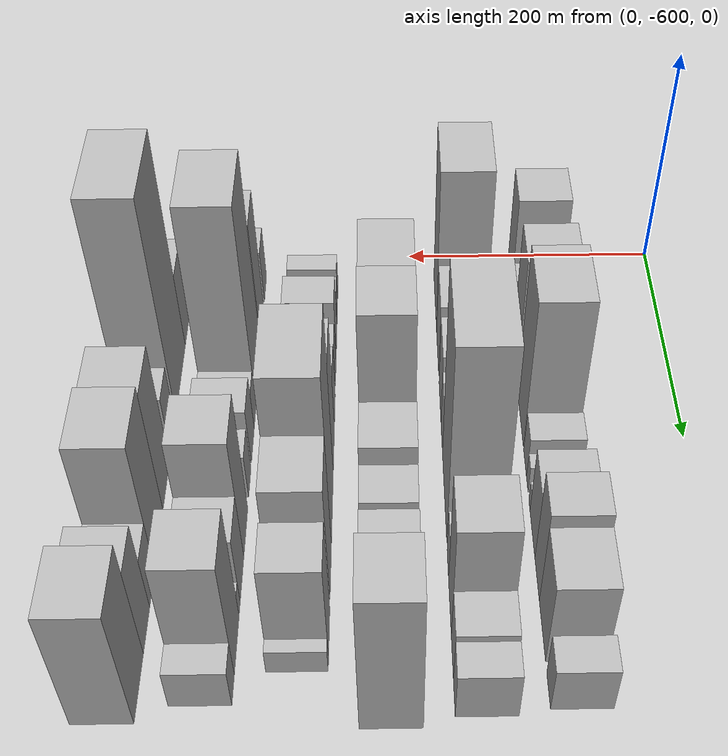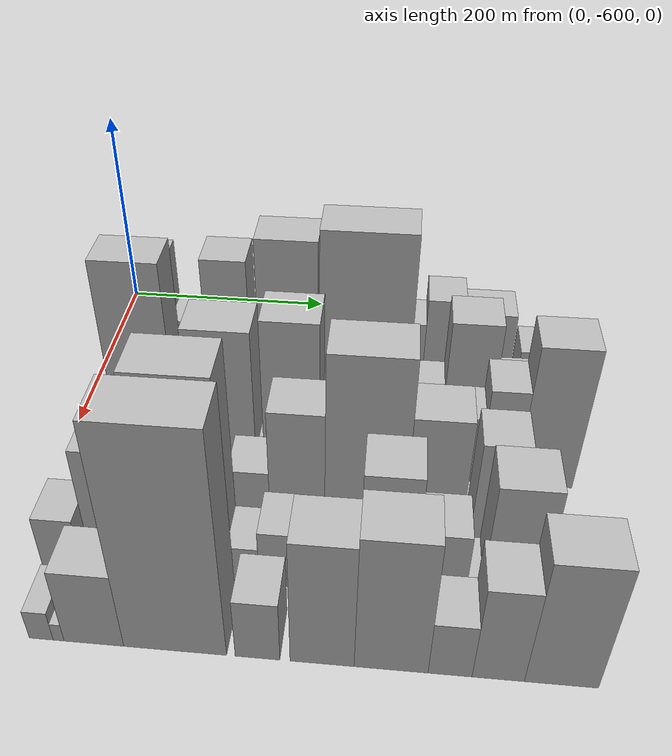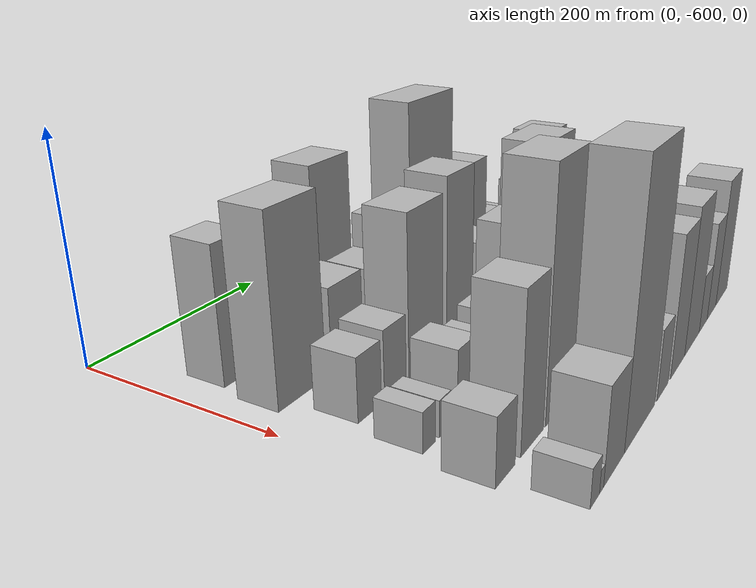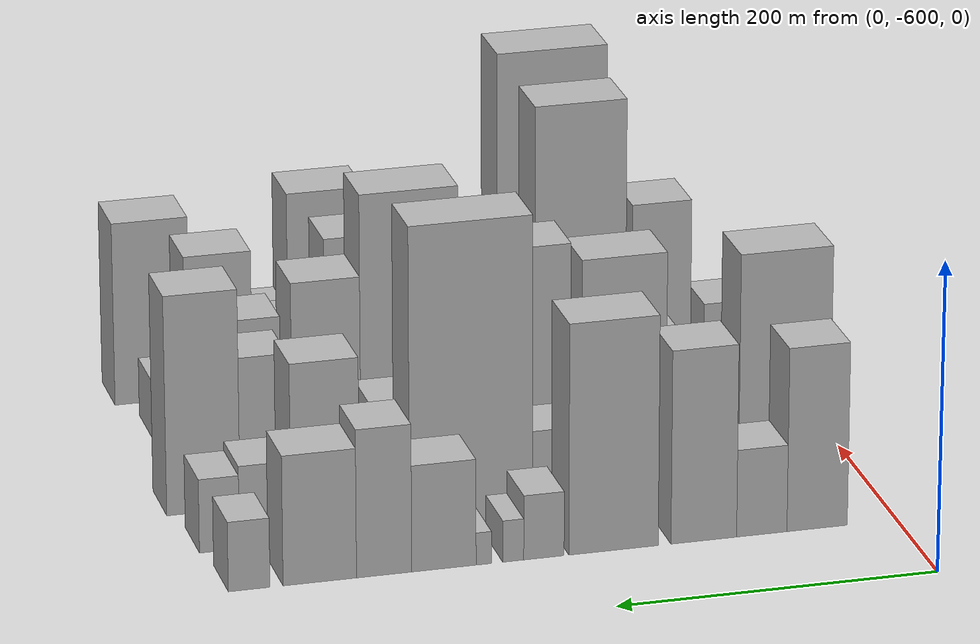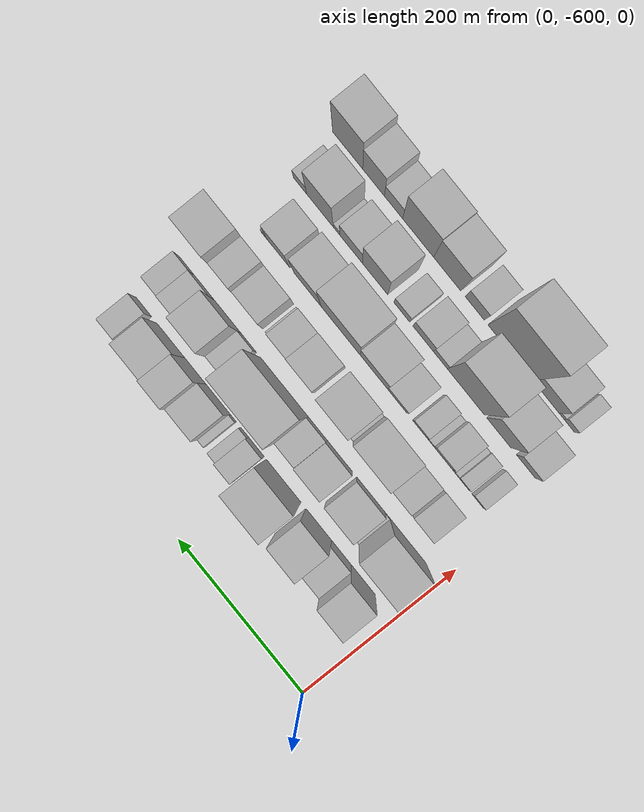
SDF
<sdf version="1.6">
 <world name="default">
  <model name="building_13">
   <static>1</static>
   <pose>100.0000 -549.0110 0 0.000000 0.000000 0.000000</pose>
   <link name="link">
    <pose>0 0 60.00 0 0 0</pose>
    <collision name="collision"><geometry><box><size>40.0000 38.3477 120.0000</size></box></geometry></collision>
    <visual name="visual">
     <cast_shadows>0</cast_shadows>
     <geometry><box><size>40.0000 38.3477 120.0000</size></box></geometry>
     <material>
      <script>
       <uri>model://HANNAS_wall/materials/scripts</uri>
       <uri>model://HANNAS_wall/materials/textures</uri>
       <name>vrc/HANNAS_wall</name>
      </script>
     </material>
    </visual>
   </link>
  </model>
  <model name="building_14">
   <static>1</static>
   <pose>100.0000 -513.8945 0 0.000000 0.000000 0.000000</pose>
   <link name="link">
    <pose>0 0 28.50 0 0 0</pose>
    <collision name="collision"><geometry><box><size>40.0000 31.8853 57.0000</size></box></geometry></collision>
    <visual name="visual">
     <cast_shadows>0</cast_shadows>
     <geometry><box><size>40.0000 31.8853 57.0000</size></box></geometry>
     <material>
      <script>
       <uri>model://HANNAS_wall/materials/scripts</uri>
       <uri>model://HANNAS_wall/materials/textures</uri>
       <name>vrc/HANNAS_wall</name>
      </script>
     </material>
    </visual>
   </link>
  </model>
  <model name="building_15">
   <static>1</static>
   <pose>100.0000 -477.2440 0 0.000000 0.000000 0.000000</pose>
   <link name="link">
    <pose>0 0 63.00 0 0 0</pose>
    <collision name="collision"><geometry><box><size>40.0000 41.4157 126.0000</size></box></geometry></collision>
    <visual name="visual">
     <cast_shadows>0</cast_shadows>
     <geometry><box><size>40.0000 41.4157 126.0000</size></box></geometry>
     <material>
      <script>
       <uri>model://HANNAS_wall/materials/scripts</uri>
       <uri>model://HANNAS_wall/materials/textures</uri>
       <name>vrc/HANNAS_wall</name>
      </script>
     </material>
    </visual>
   </link>
  </model>
  <model name="building_16">
   <static>1</static>
   <pose>100.0000 -420.5181 0 0.000000 0.000000 0.000000</pose>
   <link name="link">
    <pose>0 0 75.00 0 0 0</pose>
    <collision name="collision"><geometry><box><size>40.0000 56.0362 150.0000</size></box></geometry></collision>
    <visual name="visual">
     <cast_shadows>0</cast_shadows>
     <geometry><box><size>40.0000 56.0362 150.0000</size></box></geometry>
     <material>
      <script>
       <uri>model://HANNAS_wall/materials/scripts</uri>
       <uri>model://HANNAS_wall/materials/textures</uri>
       <name>vrc/HANNAS_wall</name>
      </script>
     </material>
    </visual>
   </link>
  </model>
  <model name="building_17">
   <static>1</static>
   <pose>100.0000 -376.9105 0 0.000000 0.000000 0.000000</pose>
   <link name="link">
    <pose>0 0 21.00 0 0 0</pose>
    <collision name="collision"><geometry><box><size>40.0000 25.1789 42.0000</size></box></geometry></collision>
    <visual name="visual">
     <cast_shadows>0</cast_shadows>
     <geometry><box><size>40.0000 25.1789 42.0000</size></box></geometry>
     <material>
      <script>
       <uri>model://HANNAS_wall/materials/scripts</uri>
       <uri>model://HANNAS_wall/materials/textures</uri>
       <name>vrc/HANNAS_wall</name>
      </script>
     </material>
    </visual>
   </link>
  </model>
  <model name="building_18">
   <static>1</static>
   <pose>100.0000 -357.7944 0 0.000000 0.000000 0.000000</pose>
   <link name="link">
    <pose>0 0 13.50 0 0 0</pose>
    <collision name="collision"><geometry><box><size>40.0000 13.0532 27.0000</size></box></geometry></collision>
    <visual name="visual">
     <cast_shadows>0</cast_shadows>
     <geometry><box><size>40.0000 13.0532 27.0000</size></box></geometry>
     <material>
      <script>
       <uri>model://HANNAS_wall/materials/scripts</uri>
       <uri>model://HANNAS_wall/materials/textures</uri>
       <name>vrc/HANNAS_wall</name>
      </script>
     </material>
    </visual>
   </link>
  </model>
  <model name="building_19">
   <static>1</static>
   <pose>100.0000 -339.4813 0 0.000000 0.000000 0.000000</pose>
   <link name="link">
    <pose>0 0 10.50 0 0 0</pose>
    <collision name="collision"><geometry><box><size>40.0000 9.5730 21.0000</size></box></geometry></collision>
    <visual name="visual">
     <cast_shadows>0</cast_shadows>
     <geometry><box><size>40.0000 9.5730 21.0000</size></box></geometry>
     <material>
      <script>
       <uri>model://HANNAS_wall/materials/scripts</uri>
       <uri>model://HANNAS_wall/materials/textures</uri>
       <name>vrc/HANNAS_wall</name>
      </script>
     </material>
    </visual>
   </link>
  </model>
  <model name="building_20">
   <static>1</static>
   <pose>100.0000 -314.7548 0 0.000000 0.000000 0.000000</pose>
   <link name="link">
    <pose>0 0 34.50 0 0 0</pose>
    <collision name="collision"><geometry><box><size>40.0000 39.8801 69.0000</size></box></geometry></collision>
    <visual name="visual">
     <cast_shadows>0</cast_shadows>
     <geometry><box><size>40.0000 39.8801 69.0000</size></box></geometry>
     <material>
      <script>
       <uri>model://HANNAS_wall/materials/scripts</uri>
       <uri>model://HANNAS_wall/materials/textures</uri>
       <name>vrc/HANNAS_wall</name>
      </script>
     </material>
    </visual>
   </link>
  </model>
  <model name="building_21">
   <static>1</static>
   <pose>100.0000 -277.7871 0 0.000000 0.000000 0.000000</pose>
   <link name="link">
    <pose>0 0 48.00 0 0 0</pose>
    <collision name="collision"><geometry><box><size>40.0000 34.0553 96.0000</size></box></geometry></collision>
    <visual name="visual">
     <cast_shadows>0</cast_shadows>
     <geometry><box><size>40.0000 34.0553 96.0000</size></box></geometry>
     <material>
      <script>
       <uri>model://HANNAS_wall/materials/scripts</uri>
       <uri>model://HANNAS_wall/materials/textures</uri>
       <name>vrc/HANNAS_wall</name>
      </script>
     </material>
    </visual>
   </link>
  </model>
  <model name="building_22">
   <static>1</static>
   <pose>100.0000 -238.1941 0 0.000000 0.000000 0.000000</pose>
   <link name="link">
    <pose>0 0 42.00 0 0 0</pose>
    <collision name="collision"><geometry><box><size>40.0000 45.1307 84.0000</size></box></geometry></collision>
    <visual name="visual">
     <cast_shadows>0</cast_shadows>
     <geometry><box><size>40.0000 45.1307 84.0000</size></box></geometry>
     <material>
      <script>
       <uri>model://HANNAS_wall/materials/scripts</uri>
       <uri>model://HANNAS_wall/materials/textures</uri>
       <name>vrc/HANNAS_wall</name>
      </script>
     </material>
    </visual>
   </link>
  </model>
  <model name="building_23">
   <static>1</static>
   <pose>100.0000 -194.8852 0 0.000000 0.000000 0.000000</pose>
   <link name="link">
    <pose>0 0 22.50 0 0 0</pose>
    <collision name="collision"><geometry><box><size>40.0000 25.4871 45.0000</size></box></geometry></collision>
    <visual name="visual">
     <cast_shadows>0</cast_shadows>
     <geometry><box><size>40.0000 25.4871 45.0000</size></box></geometry>
     <material>
      <script>
       <uri>model://HANNAS_wall/materials/scripts</uri>
       <uri>model://HANNAS_wall/materials/textures</uri>
       <name>vrc/HANNAS_wall</name>
      </script>
     </material>
    </visual>
   </link>
  </model>
  <model name="building_64">
   <static>1</static>
   <pose>160.0000 -546.1811 0 0.000000 0.000000 0.000000</pose>
   <link name="link">
    <pose>0 0 79.50 0 0 0</pose>
    <collision name="collision"><geometry><box><size>40.0000 58.6380 159.0000</size></box></geometry></collision>
    <visual name="visual">
     <cast_shadows>0</cast_shadows>
     <geometry><box><size>40.0000 58.6380 159.0000</size></box></geometry>
     <material>
      <script>
       <uri>model://HANNAS_wall/materials/scripts</uri>
       <uri>model://HANNAS_wall/materials/textures</uri>
       <name>vrc/HANNAS_wall</name>
      </script>
     </material>
    </visual>
   </link>
  </model>
  <model name="building_65">
   <static>1</static>
   <pose>160.0000 -512.8103 0 0.000000 0.000000 0.000000</pose>
   <link name="link">
    <pose>0 0 9.00 0 0 0</pose>
    <collision name="collision"><geometry><box><size>40.0000 8.1037 18.0000</size></box></geometry></collision>
    <visual name="visual">
     <cast_shadows>0</cast_shadows>
     <geometry><box><size>40.0000 8.1037 18.0000</size></box></geometry>
     <material>
      <script>
       <uri>model://HANNAS_wall/materials/scripts</uri>
       <uri>model://HANNAS_wall/materials/textures</uri>
       <name>vrc/HANNAS_wall</name>
      </script>
     </material>
    </visual>
   </link>
  </model>
  <model name="building_66">
   <static>1</static>
   <pose>160.0000 -486.3279 0 0.000000 0.000000 0.000000</pose>
   <link name="link">
    <pose>0 0 37.50 0 0 0</pose>
    <collision name="collision"><geometry><box><size>40.0000 44.8610 75.0000</size></box></geometry></collision>
    <visual name="visual">
     <cast_shadows>0</cast_shadows>
     <geometry><box><size>40.0000 44.8610 75.0000</size></box></geometry>
     <material>
      <script>
       <uri>model://HANNAS_wall/materials/scripts</uri>
       <uri>model://HANNAS_wall/materials/textures</uri>
       <name>vrc/HANNAS_wall</name>
      </script>
     </material>
    </visual>
   </link>
  </model>
  <model name="building_67">
   <static>1</static>
   <pose>160.0000 -436.6515 0 0.000000 0.000000 0.000000</pose>
   <link name="link">
    <pose>0 0 36.00 0 0 0</pose>
    <collision name="collision"><geometry><box><size>40.0000 40.4918 72.0000</size></box></geometry></collision>
    <visual name="visual">
     <cast_shadows>0</cast_shadows>
     <geometry><box><size>40.0000 40.4918 72.0000</size></box></geometry>
     <material>
      <script>
       <uri>model://HANNAS_wall/materials/scripts</uri>
       <uri>model://HANNAS_wall/materials/textures</uri>
       <name>vrc/HANNAS_wall</name>
      </script>
     </material>
    </visual>
   </link>
  </model>
  <model name="building_68">
   <static>1</static>
   <pose>160.0000 -401.1397 0 0.000000 0.000000 0.000000</pose>
   <link name="link">
    <pose>0 0 28.50 0 0 0</pose>
    <collision name="collision"><geometry><box><size>40.0000 30.5318 57.0000</size></box></geometry></collision>
    <visual name="visual">
     <cast_shadows>0</cast_shadows>
     <geometry><box><size>40.0000 30.5318 57.0000</size></box></geometry>
     <material>
      <script>
       <uri>model://HANNAS_wall/materials/scripts</uri>
       <uri>model://HANNAS_wall/materials/textures</uri>
       <name>vrc/HANNAS_wall</name>
      </script>
     </material>
    </visual>
   </link>
  </model>
  <model name="building_69">
   <static>1</static>
   <pose>160.0000 -347.1861 0 0.000000 0.000000 0.000000</pose>
   <link name="link">
    <pose>0 0 99.00 0 0 0</pose>
    <collision name="collision"><geometry><box><size>40.0000 77.3754 198.0000</size></box></geometry></collision>
    <visual name="visual">
     <cast_shadows>0</cast_shadows>
     <geometry><box><size>40.0000 77.3754 198.0000</size></box></geometry>
     <material>
      <script>
       <uri>model://HANNAS_wall/materials/scripts</uri>
       <uri>model://HANNAS_wall/materials/textures</uri>
       <name>vrc/HANNAS_wall</name>
      </script>
     </material>
    </visual>
   </link>
  </model>
  <model name="building_70">
   <static>1</static>
   <pose>160.0000 -289.8825 0 0.000000 0.000000 0.000000</pose>
   <link name="link">
    <pose>0 0 22.50 0 0 0</pose>
    <collision name="collision"><geometry><box><size>40.0000 25.2317 45.0000</size></box></geometry></collision>
    <visual name="visual">
     <cast_shadows>0</cast_shadows>
     <geometry><box><size>40.0000 25.2317 45.0000</size></box></geometry>
     <material>
      <script>
       <uri>model://HANNAS_wall/materials/scripts</uri>
       <uri>model://HANNAS_wall/materials/textures</uri>
       <name>vrc/HANNAS_wall</name>
      </script>
     </material>
    </visual>
   </link>
  </model>
  <model name="building_71">
   <static>1</static>
   <pose>160.0000 -255.9788 0 0.000000 0.000000 0.000000</pose>
   <link name="link">
    <pose>0 0 58.50 0 0 0</pose>
    <collision name="collision"><geometry><box><size>40.0000 42.5757 117.0000</size></box></geometry></collision>
    <visual name="visual">
     <cast_shadows>0</cast_shadows>
     <geometry><box><size>40.0000 42.5757 117.0000</size></box></geometry>
     <material>
      <script>
       <uri>model://HANNAS_wall/materials/scripts</uri>
       <uri>model://HANNAS_wall/materials/textures</uri>
       <name>vrc/HANNAS_wall</name>
      </script>
     </material>
    </visual>
   </link>
  </model>
  <model name="building_72">
   <static>1</static>
   <pose>160.0000 -218.6402 0 0.000000 0.000000 0.000000</pose>
   <link name="link">
    <pose>0 0 27.00 0 0 0</pose>
    <collision name="collision"><geometry><box><size>40.0000 32.1015 54.0000</size></box></geometry></collision>
    <visual name="visual">
     <cast_shadows>0</cast_shadows>
     <geometry><box><size>40.0000 32.1015 54.0000</size></box></geometry>
     <material>
      <script>
       <uri>model://HANNAS_wall/materials/scripts</uri>
       <uri>model://HANNAS_wall/materials/textures</uri>
       <name>vrc/HANNAS_wall</name>
      </script>
     </material>
    </visual>
   </link>
  </model>
  <model name="building_73">
   <static>1</static>
   <pose>160.0000 -190.2422 0 0.000000 0.000000 0.000000</pose>
   <link name="link">
    <pose>0 0 24.00 0 0 0</pose>
    <collision name="collision"><geometry><box><size>40.0000 24.6945 48.0000</size></box></geometry></collision>
    <visual name="visual">
     <cast_shadows>0</cast_shadows>
     <geometry><box><size>40.0000 24.6945 48.0000</size></box></geometry>
     <material>
      <script>
       <uri>model://HANNAS_wall/materials/scripts</uri>
       <uri>model://HANNAS_wall/materials/textures</uri>
       <name>vrc/HANNAS_wall</name>
      </script>
     </material>
    </visual>
   </link>
  </model>
  <model name="building_117">
   <static>1</static>
   <pose>220.0000 -543.0124 0 0.000000 0.000000 0.000000</pose>
   <link name="link">
    <pose>0 0 27.00 0 0 0</pose>
    <collision name="collision"><geometry><box><size>40.0000 31.2205 54.0000</size></box></geometry></collision>
    <visual name="visual">
     <cast_shadows>0</cast_shadows>
     <geometry><box><size>40.0000 31.2205 54.0000</size></box></geometry>
     <material>
      <script>
       <uri>model://HANNAS_wall/materials/scripts</uri>
       <uri>model://HANNAS_wall/materials/textures</uri>
       <name>vrc/HANNAS_wall</name>
      </script>
     </material>
    </visual>
   </link>
  </model>
  <model name="building_118">
   <static>1</static>
   <pose>220.0000 -507.6047 0 0.000000 0.000000 0.000000</pose>
   <link name="link">
    <pose>0 0 30.00 0 0 0</pose>
    <collision name="collision"><geometry><box><size>40.0000 31.5948 60.0000</size></box></geometry></collision>
    <visual name="visual">
     <cast_shadows>0</cast_shadows>
     <geometry><box><size>40.0000 31.5948 60.0000</size></box></geometry>
     <material>
      <script>
       <uri>model://HANNAS_wall/materials/scripts</uri>
       <uri>model://HANNAS_wall/materials/textures</uri>
       <name>vrc/HANNAS_wall</name>
      </script>
     </material>
    </visual>
   </link>
  </model>
  <model name="building_119">
   <static>1</static>
   <pose>220.0000 -460.5704 0 0.000000 0.000000 0.000000</pose>
   <link name="link">
    <pose>0 0 70.50 0 0 0</pose>
    <collision name="collision"><geometry><box><size>40.0000 54.4738 141.0000</size></box></geometry></collision>
    <visual name="visual">
     <cast_shadows>0</cast_shadows>
     <geometry><box><size>40.0000 54.4738 141.0000</size></box></geometry>
     <material>
      <script>
       <uri>model://HANNAS_wall/materials/scripts</uri>
       <uri>model://HANNAS_wall/materials/textures</uri>
       <name>vrc/HANNAS_wall</name>
      </script>
     </material>
    </visual>
   </link>
  </model>
  <model name="building_120">
   <static>1</static>
   <pose>220.0000 -429.8529 0 0.000000 0.000000 0.000000</pose>
   <link name="link">
    <pose>0 0 7.50 0 0 0</pose>
    <collision name="collision"><geometry><box><size>40.0000 6.9613 15.0000</size></box></geometry></collision>
    <visual name="visual">
     <cast_shadows>0</cast_shadows>
     <geometry><box><size>40.0000 6.9613 15.0000</size></box></geometry>
     <material>
      <script>
       <uri>model://HANNAS_wall/materials/scripts</uri>
       <uri>model://HANNAS_wall/materials/textures</uri>
       <name>vrc/HANNAS_wall</name>
      </script>
     </material>
    </visual>
   </link>
  </model>
  <model name="building_121">
   <static>1</static>
   <pose>220.0000 -403.0510 0 0.000000 0.000000 0.000000</pose>
   <link name="link">
    <pose>0 0 76.50 0 0 0</pose>
    <collision name="collision"><geometry><box><size>40.0000 46.6425 153.0000</size></box></geometry></collision>
    <visual name="visual">
     <cast_shadows>0</cast_shadows>
     <geometry><box><size>40.0000 46.6425 153.0000</size></box></geometry>
     <material>
      <script>
       <uri>model://HANNAS_wall/materials/scripts</uri>
       <uri>model://HANNAS_wall/materials/textures</uri>
       <name>vrc/HANNAS_wall</name>
      </script>
     </material>
    </visual>
   </link>
  </model>
  <model name="building_122">
   <static>1</static>
   <pose>220.0000 -350.6052 0 0.000000 0.000000 0.000000</pose>
   <link name="link">
    <pose>0 0 39.00 0 0 0</pose>
    <collision name="collision"><geometry><box><size>40.0000 40.2491 78.0000</size></box></geometry></collision>
    <visual name="visual">
     <cast_shadows>0</cast_shadows>
     <geometry><box><size>40.0000 40.2491 78.0000</size></box></geometry>
     <material>
      <script>
       <uri>model://HANNAS_wall/materials/scripts</uri>
       <uri>model://HANNAS_wall/materials/textures</uri>
       <name>vrc/HANNAS_wall</name>
      </script>
     </material>
    </visual>
   </link>
  </model>
  <model name="building_123">
   <static>1</static>
   <pose>220.0000 -314.6369 0 0.000000 0.000000 0.000000</pose>
   <link name="link">
    <pose>0 0 30.00 0 0 0</pose>
    <collision name="collision"><geometry><box><size>40.0000 31.6874 60.0000</size></box></geometry></collision>
    <visual name="visual">
     <cast_shadows>0</cast_shadows>
     <geometry><box><size>40.0000 31.6874 60.0000</size></box></geometry>
     <material>
      <script>
       <uri>model://HANNAS_wall/materials/scripts</uri>
       <uri>model://HANNAS_wall/materials/textures</uri>
       <name>vrc/HANNAS_wall</name>
      </script>
     </material>
    </visual>
   </link>
  </model>
  <model name="building_124">
   <static>1</static>
   <pose>220.0000 -295.6961 0 0.000000 0.000000 0.000000</pose>
   <link name="link">
    <pose>0 0 7.50 0 0 0</pose>
    <collision name="collision"><geometry><box><size>40.0000 6.1943 15.0000</size></box></geometry></collision>
    <visual name="visual">
     <cast_shadows>0</cast_shadows>
     <geometry><box><size>40.0000 6.1943 15.0000</size></box></geometry>
     <material>
      <script>
       <uri>model://HANNAS_wall/materials/scripts</uri>
       <uri>model://HANNAS_wall/materials/textures</uri>
       <name>vrc/HANNAS_wall</name>
      </script>
     </material>
    </visual>
   </link>
  </model>
  <model name="building_125">
   <static>1</static>
   <pose>220.0000 -267.4667 0 0.000000 0.000000 0.000000</pose>
   <link name="link">
    <pose>0 0 34.50 0 0 0</pose>
    <collision name="collision"><geometry><box><size>40.0000 40.2645 69.0000</size></box></geometry></collision>
    <visual name="visual">
     <cast_shadows>0</cast_shadows>
     <geometry><box><size>40.0000 40.2645 69.0000</size></box></geometry>
     <material>
      <script>
       <uri>model://HANNAS_wall/materials/scripts</uri>
       <uri>model://HANNAS_wall/materials/textures</uri>
       <name>vrc/HANNAS_wall</name>
      </script>
     </material>
    </visual>
   </link>
  </model>
  <model name="building_126">
   <static>1</static>
   <pose>220.0000 -232.0064 0 0.000000 0.000000 0.000000</pose>
   <link name="link">
    <pose>0 0 49.50 0 0 0</pose>
    <collision name="collision"><geometry><box><size>40.0000 30.6561 99.0000</size></box></geometry></collision>
    <visual name="visual">
     <cast_shadows>0</cast_shadows>
     <geometry><box><size>40.0000 30.6561 99.0000</size></box></geometry>
     <material>
      <script>
       <uri>model://HANNAS_wall/materials/scripts</uri>
       <uri>model://HANNAS_wall/materials/textures</uri>
       <name>vrc/HANNAS_wall</name>
      </script>
     </material>
    </visual>
   </link>
  </model>
  <model name="building_127">
   <static>1</static>
   <pose>220.0000 -193.7218 0 0.000000 0.000000 0.000000</pose>
   <link name="link">
    <pose>0 0 72.00 0 0 0</pose>
    <collision name="collision"><geometry><box><size>40.0000 45.9133 144.0000</size></box></geometry></collision>
    <visual name="visual">
     <cast_shadows>0</cast_shadows>
     <geometry><box><size>40.0000 45.9133 144.0000</size></box></geometry>
     <material>
      <script>
       <uri>model://HANNAS_wall/materials/scripts</uri>
       <uri>model://HANNAS_wall/materials/textures</uri>
       <name>vrc/HANNAS_wall</name>
      </script>
     </material>
    </visual>
   </link>
  </model>
  <model name="building_171">
   <static>1</static>
   <pose>280.0000 -558.8904 0 0.000000 0.000000 0.000000</pose>
   <link name="link">
    <pose>0 0 16.50 0 0 0</pose>
    <collision name="collision"><geometry><box><size>40.0000 17.8056 33.0000</size></box></geometry></collision>
    <visual name="visual">
     <cast_shadows>0</cast_shadows>
     <geometry><box><size>40.0000 17.8056 33.0000</size></box></geometry>
     <material>
      <script>
       <uri>model://HANNAS_wall/materials/scripts</uri>
       <uri>model://HANNAS_wall/materials/textures</uri>
       <name>vrc/HANNAS_wall</name>
      </script>
     </material>
    </visual>
   </link>
  </model>
  <model name="building_172">
   <static>1</static>
   <pose>280.0000 -536.4356 0 0.000000 0.000000 0.000000</pose>
   <link name="link">
    <pose>0 0 15.00 0 0 0</pose>
    <collision name="collision"><geometry><box><size>40.0000 17.1041 30.0000</size></box></geometry></collision>
    <visual name="visual">
     <cast_shadows>0</cast_shadows>
     <geometry><box><size>40.0000 17.1041 30.0000</size></box></geometry>
     <material>
      <script>
       <uri>model://HANNAS_wall/materials/scripts</uri>
       <uri>model://HANNAS_wall/materials/textures</uri>
       <name>vrc/HANNAS_wall</name>
      </script>
     </material>
    </visual>
   </link>
  </model>
  <model name="building_173">
   <static>1</static>
   <pose>280.0000 -522.8196 0 0.000000 0.000000 0.000000</pose>
   <link name="link">
    <pose>0 0 10.50 0 0 0</pose>
    <collision name="collision"><geometry><box><size>40.0000 10.1279 21.0000</size></box></geometry></collision>
    <visual name="visual">
     <cast_shadows>0</cast_shadows>
     <geometry><box><size>40.0000 10.1279 21.0000</size></box></geometry>
     <material>
      <script>
       <uri>model://HANNAS_wall/materials/scripts</uri>
       <uri>model://HANNAS_wall/materials/textures</uri>
       <name>vrc/HANNAS_wall</name>
      </script>
     </material>
    </visual>
   </link>
  </model>
  <model name="building_174">
   <static>1</static>
   <pose>280.0000 -502.8081 0 0.000000 0.000000 0.000000</pose>
   <link name="link">
    <pose>0 0 28.50 0 0 0</pose>
    <collision name="collision"><geometry><box><size>40.0000 29.8950 57.0000</size></box></geometry></collision>
    <visual name="visual">
     <cast_shadows>0</cast_shadows>
     <geometry><box><size>40.0000 29.8950 57.0000</size></box></geometry>
     <material>
      <script>
       <uri>model://HANNAS_wall/materials/scripts</uri>
       <uri>model://HANNAS_wall/materials/textures</uri>
       <name>vrc/HANNAS_wall</name>
      </script>
     </material>
    </visual>
   </link>
  </model>
  <model name="building_175">
   <static>1</static>
   <pose>280.0000 -482.8628 0 0.000000 0.000000 0.000000</pose>
   <link name="link">
    <pose>0 0 12.00 0 0 0</pose>
    <collision name="collision"><geometry><box><size>40.0000 9.9957 24.0000</size></box></geometry></collision>
    <visual name="visual">
     <cast_shadows>0</cast_shadows>
     <geometry><box><size>40.0000 9.9957 24.0000</size></box></geometry>
     <material>
      <script>
       <uri>model://HANNAS_wall/materials/scripts</uri>
       <uri>model://HANNAS_wall/materials/textures</uri>
       <name>vrc/HANNAS_wall</name>
      </script>
     </material>
    </visual>
   </link>
  </model>
  <model name="building_176">
   <static>1</static>
   <pose>280.0000 -466.0513 0 0.000000 0.000000 0.000000</pose>
   <link name="link">
    <pose>0 0 22.50 0 0 0</pose>
    <collision name="collision"><geometry><box><size>40.0000 23.6273 45.0000</size></box></geometry></collision>
    <visual name="visual">
     <cast_shadows>0</cast_shadows>
     <geometry><box><size>40.0000 23.6273 45.0000</size></box></geometry>
     <material>
      <script>
       <uri>model://HANNAS_wall/materials/scripts</uri>
       <uri>model://HANNAS_wall/materials/textures</uri>
       <name>vrc/HANNAS_wall</name>
      </script>
     </material>
    </visual>
   </link>
  </model>
  <model name="building_177">
   <static>1</static>
   <pose>280.0000 -429.2841 0 0.000000 0.000000 0.000000</pose>
   <link name="link">
    <pose>0 0 27.00 0 0 0</pose>
    <collision name="collision"><geometry><box><size>40.0000 31.9070 54.0000</size></box></geometry></collision>
    <visual name="visual">
     <cast_shadows>0</cast_shadows>
     <geometry><box><size>40.0000 31.9070 54.0000</size></box></geometry>
     <material>
      <script>
       <uri>model://HANNAS_wall/materials/scripts</uri>
       <uri>model://HANNAS_wall/materials/textures</uri>
       <name>vrc/HANNAS_wall</name>
      </script>
     </material>
    </visual>
   </link>
  </model>
  <model name="building_178">
   <static>1</static>
   <pose>280.0000 -391.7743 0 0.000000 0.000000 0.000000</pose>
   <link name="link">
    <pose>0 0 58.50 0 0 0</pose>
    <collision name="collision"><geometry><box><size>40.0000 43.1126 117.0000</size></box></geometry></collision>
    <visual name="visual">
     <cast_shadows>0</cast_shadows>
     <geometry><box><size>40.0000 43.1126 117.0000</size></box></geometry>
     <material>
      <script>
       <uri>model://HANNAS_wall/materials/scripts</uri>
       <uri>model://HANNAS_wall/materials/textures</uri>
       <name>vrc/HANNAS_wall</name>
      </script>
     </material>
    </visual>
   </link>
  </model>
  <model name="building_179">
   <static>1</static>
   <pose>280.0000 -338.8370 0 0.000000 0.000000 0.000000</pose>
   <link name="link">
    <pose>0 0 87.00 0 0 0</pose>
    <collision name="collision"><geometry><box><size>40.0000 62.7622 174.0000</size></box></geometry></collision>
    <visual name="visual">
     <cast_shadows>0</cast_shadows>
     <geometry><box><size>40.0000 62.7622 174.0000</size></box></geometry>
     <material>
      <script>
       <uri>model://HANNAS_wall/materials/scripts</uri>
       <uri>model://HANNAS_wall/materials/textures</uri>
       <name>vrc/HANNAS_wall</name>
      </script>
     </material>
    </visual>
   </link>
  </model>
  <model name="building_180">
   <static>1</static>
   <pose>280.0000 -285.5510 0 0.000000 0.000000 0.000000</pose>
   <link name="link">
    <pose>0 0 60.00 0 0 0</pose>
    <collision name="collision"><geometry><box><size>40.0000 43.8097 120.0000</size></box></geometry></collision>
    <visual name="visual">
     <cast_shadows>0</cast_shadows>
     <geometry><box><size>40.0000 43.8097 120.0000</size></box></geometry>
     <material>
      <script>
       <uri>model://HANNAS_wall/materials/scripts</uri>
       <uri>model://HANNAS_wall/materials/textures</uri>
       <name>vrc/HANNAS_wall</name>
      </script>
     </material>
    </visual>
   </link>
  </model>
  <model name="building_181">
   <static>1</static>
   <pose>280.0000 -238.4913 0 0.000000 0.000000 0.000000</pose>
   <link name="link">
    <pose>0 0 49.50 0 0 0</pose>
    <collision name="collision"><geometry><box><size>40.0000 36.3097 99.0000</size></box></geometry></collision>
    <visual name="visual">
     <cast_shadows>0</cast_shadows>
     <geometry><box><size>40.0000 36.3097 99.0000</size></box></geometry>
     <material>
      <script>
       <uri>model://HANNAS_wall/materials/scripts</uri>
       <uri>model://HANNAS_wall/materials/textures</uri>
       <name>vrc/HANNAS_wall</name>
      </script>
     </material>
    </visual>
   </link>
  </model>
  <model name="building_182">
   <static>1</static>
   <pose>280.0000 -215.5106 0 0.000000 0.000000 0.000000</pose>
   <link name="link">
    <pose>0 0 12.00 0 0 0</pose>
    <collision name="collision"><geometry><box><size>40.0000 9.6516 24.0000</size></box></geometry></collision>
    <visual name="visual">
     <cast_shadows>0</cast_shadows>
     <geometry><box><size>40.0000 9.6516 24.0000</size></box></geometry>
     <material>
      <script>
       <uri>model://HANNAS_wall/materials/scripts</uri>
       <uri>model://HANNAS_wall/materials/textures</uri>
       <name>vrc/HANNAS_wall</name>
      </script>
     </material>
    </visual>
   </link>
  </model>
  <model name="building_229">
   <static>1</static>
   <pose>340.0000 -562.6215 0 0.000000 0.000000 0.000000</pose>
   <link name="link">
    <pose>0 0 27.00 0 0 0</pose>
    <collision name="collision"><geometry><box><size>40.0000 30.3993 54.0000</size></box></geometry></collision>
    <visual name="visual">
     <cast_shadows>0</cast_shadows>
     <geometry><box><size>40.0000 30.3993 54.0000</size></box></geometry>
     <material>
      <script>
       <uri>model://HANNAS_wall/materials/scripts</uri>
       <uri>model://HANNAS_wall/materials/textures</uri>
       <name>vrc/HANNAS_wall</name>
      </script>
     </material>
    </visual>
   </link>
  </model>
  <model name="building_230">
   <static>1</static>
   <pose>340.0000 -518.9486 0 0.000000 0.000000 0.000000</pose>
   <link name="link">
    <pose>0 0 63.00 0 0 0</pose>
    <collision name="collision"><geometry><box><size>40.0000 38.9464 126.0000</size></box></geometry></collision>
    <visual name="visual">
     <cast_shadows>0</cast_shadows>
     <geometry><box><size>40.0000 38.9464 126.0000</size></box></geometry>
     <material>
      <script>
       <uri>model://HANNAS_wall/materials/scripts</uri>
       <uri>model://HANNAS_wall/materials/textures</uri>
       <name>vrc/HANNAS_wall</name>
      </script>
     </material>
    </visual>
   </link>
  </model>
  <model name="building_231">
   <static>1</static>
   <pose>340.0000 -465.6052 0 0.000000 0.000000 0.000000</pose>
   <link name="link">
    <pose>0 0 99.00 0 0 0</pose>
    <collision name="collision"><geometry><box><size>40.0000 59.7405 198.0000</size></box></geometry></collision>
    <visual name="visual">
     <cast_shadows>0</cast_shadows>
     <geometry><box><size>40.0000 59.7405 198.0000</size></box></geometry>
     <material>
      <script>
       <uri>model://HANNAS_wall/materials/scripts</uri>
       <uri>model://HANNAS_wall/materials/textures</uri>
       <name>vrc/HANNAS_wall</name>
      </script>
     </material>
    </visual>
   </link>
  </model>
  <model name="building_232">
   <static>1</static>
   <pose>340.0000 -424.4680 0 0.000000 0.000000 0.000000</pose>
   <link name="link">
    <pose>0 0 19.50 0 0 0</pose>
    <collision name="collision"><geometry><box><size>40.0000 22.5339 39.0000</size></box></geometry></collision>
    <visual name="visual">
     <cast_shadows>0</cast_shadows>
     <geometry><box><size>40.0000 22.5339 39.0000</size></box></geometry>
     <material>
      <script>
       <uri>model://HANNAS_wall/materials/scripts</uri>
       <uri>model://HANNAS_wall/materials/textures</uri>
       <name>vrc/HANNAS_wall</name>
      </script>
     </material>
    </visual>
   </link>
  </model>
  <model name="building_233">
   <static>1</static>
   <pose>340.0000 -396.7527 0 0.000000 0.000000 0.000000</pose>
   <link name="link">
    <pose>0 0 28.50 0 0 0</pose>
    <collision name="collision"><geometry><box><size>40.0000 32.8969 57.0000</size></box></geometry></collision>
    <visual name="visual">
     <cast_shadows>0</cast_shadows>
     <geometry><box><size>40.0000 32.8969 57.0000</size></box></geometry>
     <material>
      <script>
       <uri>model://HANNAS_wall/materials/scripts</uri>
       <uri>model://HANNAS_wall/materials/textures</uri>
       <name>vrc/HANNAS_wall</name>
      </script>
     </material>
    </visual>
   </link>
  </model>
  <model name="building_234">
   <static>1</static>
   <pose>340.0000 -362.4872 0 0.000000 0.000000 0.000000</pose>
   <link name="link">
    <pose>0 0 22.50 0 0 0</pose>
    <collision name="collision"><geometry><box><size>40.0000 25.6340 45.0000</size></box></geometry></collision>
    <visual name="visual">
     <cast_shadows>0</cast_shadows>
     <geometry><box><size>40.0000 25.6340 45.0000</size></box></geometry>
     <material>
      <script>
       <uri>model://HANNAS_wall/materials/scripts</uri>
       <uri>model://HANNAS_wall/materials/textures</uri>
       <name>vrc/HANNAS_wall</name>
      </script>
     </material>
    </visual>
   </link>
  </model>
  <model name="building_235">
   <static>1</static>
   <pose>340.0000 -319.2974 0 0.000000 0.000000 0.000000</pose>
   <link name="link">
    <pose>0 0 61.50 0 0 0</pose>
    <collision name="collision"><geometry><box><size>40.0000 40.7457 123.0000</size></box></geometry></collision>
    <visual name="visual">
     <cast_shadows>0</cast_shadows>
     <geometry><box><size>40.0000 40.7457 123.0000</size></box></geometry>
     <material>
      <script>
       <uri>model://HANNAS_wall/materials/scripts</uri>
       <uri>model://HANNAS_wall/materials/textures</uri>
       <name>vrc/HANNAS_wall</name>
      </script>
     </material>
    </visual>
   </link>
  </model>
  <model name="building_236">
   <static>1</static>
   <pose>340.0000 -280.8926 0 0.000000 0.000000 0.000000</pose>
   <link name="link">
    <pose>0 0 34.50 0 0 0</pose>
    <collision name="collision"><geometry><box><size>40.0000 36.0639 69.0000</size></box></geometry></collision>
    <visual name="visual">
     <cast_shadows>0</cast_shadows>
     <geometry><box><size>40.0000 36.0639 69.0000</size></box></geometry>
     <material>
      <script>
       <uri>model://HANNAS_wall/materials/scripts</uri>
       <uri>model://HANNAS_wall/materials/textures</uri>
       <name>vrc/HANNAS_wall</name>
      </script>
     </material>
    </visual>
   </link>
  </model>
  <model name="building_237">
   <static>1</static>
   <pose>340.0000 -257.5446 0 0.000000 0.000000 0.000000</pose>
   <link name="link">
    <pose>0 0 12.00 0 0 0</pose>
    <collision name="collision"><geometry><box><size>40.0000 10.6322 24.0000</size></box></geometry></collision>
    <visual name="visual">
     <cast_shadows>0</cast_shadows>
     <geometry><box><size>40.0000 10.6322 24.0000</size></box></geometry>
     <material>
      <script>
       <uri>model://HANNAS_wall/materials/scripts</uri>
       <uri>model://HANNAS_wall/materials/textures</uri>
       <name>vrc/HANNAS_wall</name>
      </script>
     </material>
    </visual>
   </link>
  </model>
  <model name="building_238">
   <static>1</static>
   <pose>340.0000 -230.7439 0 0.000000 0.000000 0.000000</pose>
   <link name="link">
    <pose>0 0 60.00 0 0 0</pose>
    <collision name="collision"><geometry><box><size>40.0000 42.9691 120.0000</size></box></geometry></collision>
    <visual name="visual">
     <cast_shadows>0</cast_shadows>
     <geometry><box><size>40.0000 42.9691 120.0000</size></box></geometry>
     <material>
      <script>
       <uri>model://HANNAS_wall/materials/scripts</uri>
       <uri>model://HANNAS_wall/materials/textures</uri>
       <name>vrc/HANNAS_wall</name>
      </script>
     </material>
    </visual>
   </link>
  </model>
  <model name="building_239">
   <static>1</static>
   <pose>340.0000 -198.5492 0 0.000000 0.000000 0.000000</pose>
   <link name="link">
    <pose>0 0 19.50 0 0 0</pose>
    <collision name="collision"><geometry><box><size>40.0000 21.4203 39.0000</size></box></geometry></collision>
    <visual name="visual">
     <cast_shadows>0</cast_shadows>
     <geometry><box><size>40.0000 21.4203 39.0000</size></box></geometry>
     <material>
      <script>
       <uri>model://HANNAS_wall/materials/scripts</uri>
       <uri>model://HANNAS_wall/materials/textures</uri>
       <name>vrc/HANNAS_wall</name>
      </script>
     </material>
    </visual>
   </link>
  </model>
  <model name="building_286">
   <static>1</static>
   <pose>400.0000 -558.1667 0 0.000000 0.000000 0.000000</pose>
   <link name="link">
    <pose>0 0 15.00 0 0 0</pose>
    <collision name="collision"><geometry><box><size>40.0000 17.2278 30.0000</size></box></geometry></collision>
    <visual name="visual">
     <cast_shadows>0</cast_shadows>
     <geometry><box><size>40.0000 17.2278 30.0000</size></box></geometry>
     <material>
      <script>
       <uri>model://HANNAS_wall/materials/scripts</uri>
       <uri>model://HANNAS_wall/materials/textures</uri>
       <name>vrc/HANNAS_wall</name>
      </script>
     </material>
    </visual>
   </link>
  </model>
  <model name="building_287">
   <static>1</static>
   <pose>400.0000 -545.6478 0 0.000000 0.000000 0.000000</pose>
   <link name="link">
    <pose>0 0 9.00 0 0 0</pose>
    <collision name="collision"><geometry><box><size>40.0000 7.8101 18.0000</size></box></geometry></collision>
    <visual name="visual">
     <cast_shadows>0</cast_shadows>
     <geometry><box><size>40.0000 7.8101 18.0000</size></box></geometry>
     <material>
      <script>
       <uri>model://HANNAS_wall/materials/scripts</uri>
       <uri>model://HANNAS_wall/materials/textures</uri>
       <name>vrc/HANNAS_wall</name>
      </script>
     </material>
    </visual>
   </link>
  </model>
  <model name="building_288">
   <static>1</static>
   <pose>400.0000 -520.5116 0 0.000000 0.000000 0.000000</pose>
   <link name="link">
    <pose>0 0 37.50 0 0 0</pose>
    <collision name="collision"><geometry><box><size>40.0000 42.4621 75.0000</size></box></geometry></collision>
    <visual name="visual">
     <cast_shadows>0</cast_shadows>
     <geometry><box><size>40.0000 42.4621 75.0000</size></box></geometry>
     <material>
      <script>
       <uri>model://HANNAS_wall/materials/scripts</uri>
       <uri>model://HANNAS_wall/materials/textures</uri>
       <name>vrc/HANNAS_wall</name>
      </script>
     </material>
    </visual>
   </link>
  </model>
  <model name="building_289">
   <static>1</static>
   <pose>400.0000 -463.1424 0 0.000000 0.000000 0.000000</pose>
   <link name="link">
    <pose>0 0 106.50 0 0 0</pose>
    <collision name="collision"><geometry><box><size>40.0000 72.2763 213.0000</size></box></geometry></collision>
    <visual name="visual">
     <cast_shadows>0</cast_shadows>
     <geometry><box><size>40.0000 72.2763 213.0000</size></box></geometry>
     <material>
      <script>
       <uri>model://HANNAS_wall/materials/scripts</uri>
       <uri>model://HANNAS_wall/materials/textures</uri>
       <name>vrc/HANNAS_wall</name>
      </script>
     </material>
    </visual>
   </link>
  </model>
  <model name="building_290">
   <static>1</static>
   <pose>400.0000 -405.5707 0 0.000000 0.000000 0.000000</pose>
   <link name="link">
    <pose>0 0 30.00 0 0 0</pose>
    <collision name="collision"><geometry><box><size>40.0000 30.8673 60.0000</size></box></geometry></collision>
    <visual name="visual">
     <cast_shadows>0</cast_shadows>
     <geometry><box><size>40.0000 30.8673 60.0000</size></box></geometry>
     <material>
      <script>
       <uri>model://HANNAS_wall/materials/scripts</uri>
       <uri>model://HANNAS_wall/materials/textures</uri>
       <name>vrc/HANNAS_wall</name>
      </script>
     </material>
    </visual>
   </link>
  </model>
  <model name="building_291">
   <static>1</static>
   <pose>400.0000 -361.2299 0 0.000000 0.000000 0.000000</pose>
   <link name="link">
    <pose>0 0 61.50 0 0 0</pose>
    <collision name="collision"><geometry><box><size>40.0000 43.8142 123.0000</size></box></geometry></collision>
    <visual name="visual">
     <cast_shadows>0</cast_shadows>
     <geometry><box><size>40.0000 43.8142 123.0000</size></box></geometry>
     <material>
      <script>
       <uri>model://HANNAS_wall/materials/scripts</uri>
       <uri>model://HANNAS_wall/materials/textures</uri>
       <name>vrc/HANNAS_wall</name>
      </script>
     </material>
    </visual>
   </link>
  </model>
  <model name="building_292">
   <static>1</static>
   <pose>400.0000 -314.2996 0 0.000000 0.000000 0.000000</pose>
   <link name="link">
    <pose>0 0 66.00 0 0 0</pose>
    <collision name="collision"><geometry><box><size>40.0000 50.0465 132.0000</size></box></geometry></collision>
    <visual name="visual">
     <cast_shadows>0</cast_shadows>
     <geometry><box><size>40.0000 50.0465 132.0000</size></box></geometry>
     <material>
      <script>
       <uri>model://HANNAS_wall/materials/scripts</uri>
       <uri>model://HANNAS_wall/materials/textures</uri>
       <name>vrc/HANNAS_wall</name>
      </script>
     </material>
    </visual>
   </link>
  </model>
  <model name="building_293">
   <static>1</static>
   <pose>400.0000 -274.5687 0 0.000000 0.000000 0.000000</pose>
   <link name="link">
    <pose>0 0 27.00 0 0 0</pose>
    <collision name="collision"><geometry><box><size>40.0000 29.4154 54.0000</size></box></geometry></collision>
    <visual name="visual">
     <cast_shadows>0</cast_shadows>
     <geometry><box><size>40.0000 29.4154 54.0000</size></box></geometry>
     <material>
      <script>
       <uri>model://HANNAS_wall/materials/scripts</uri>
       <uri>model://HANNAS_wall/materials/textures</uri>
       <name>vrc/HANNAS_wall</name>
      </script>
     </material>
    </visual>
   </link>
  </model>
  <model name="building_294">
   <static>1</static>
   <pose>400.0000 -242.4654 0 0.000000 0.000000 0.000000</pose>
   <link name="link">
    <pose>0 0 46.50 0 0 0</pose>
    <collision name="collision"><geometry><box><size>40.0000 34.7913 93.0000</size></box></geometry></collision>
    <visual name="visual">
     <cast_shadows>0</cast_shadows>
     <geometry><box><size>40.0000 34.7913 93.0000</size></box></geometry>
     <material>
      <script>
       <uri>model://HANNAS_wall/materials/scripts</uri>
       <uri>model://HANNAS_wall/materials/textures</uri>
       <name>vrc/HANNAS_wall</name>
      </script>
     </material>
    </visual>
   </link>
  </model>
  <model name="building_295">
   <static>1</static>
   <pose>400.0000 -200.7117 0 0.000000 0.000000 0.000000</pose>
   <link name="link">
    <pose>0 0 61.50 0 0 0</pose>
    <collision name="collision"><geometry><box><size>40.0000 48.7161 123.0000</size></box></geometry></collision>
    <visual name="visual">
     <cast_shadows>0</cast_shadows>
     <geometry><box><size>40.0000 48.7161 123.0000</size></box></geometry>
     <material>
      <script>
       <uri>model://HANNAS_wall/materials/scripts</uri>
       <uri>model://HANNAS_wall/materials/textures</uri>
       <name>vrc/HANNAS_wall</name>
      </script>
     </material>
    </visual>
   </link>
  </model>
 </world>
</sdf>
